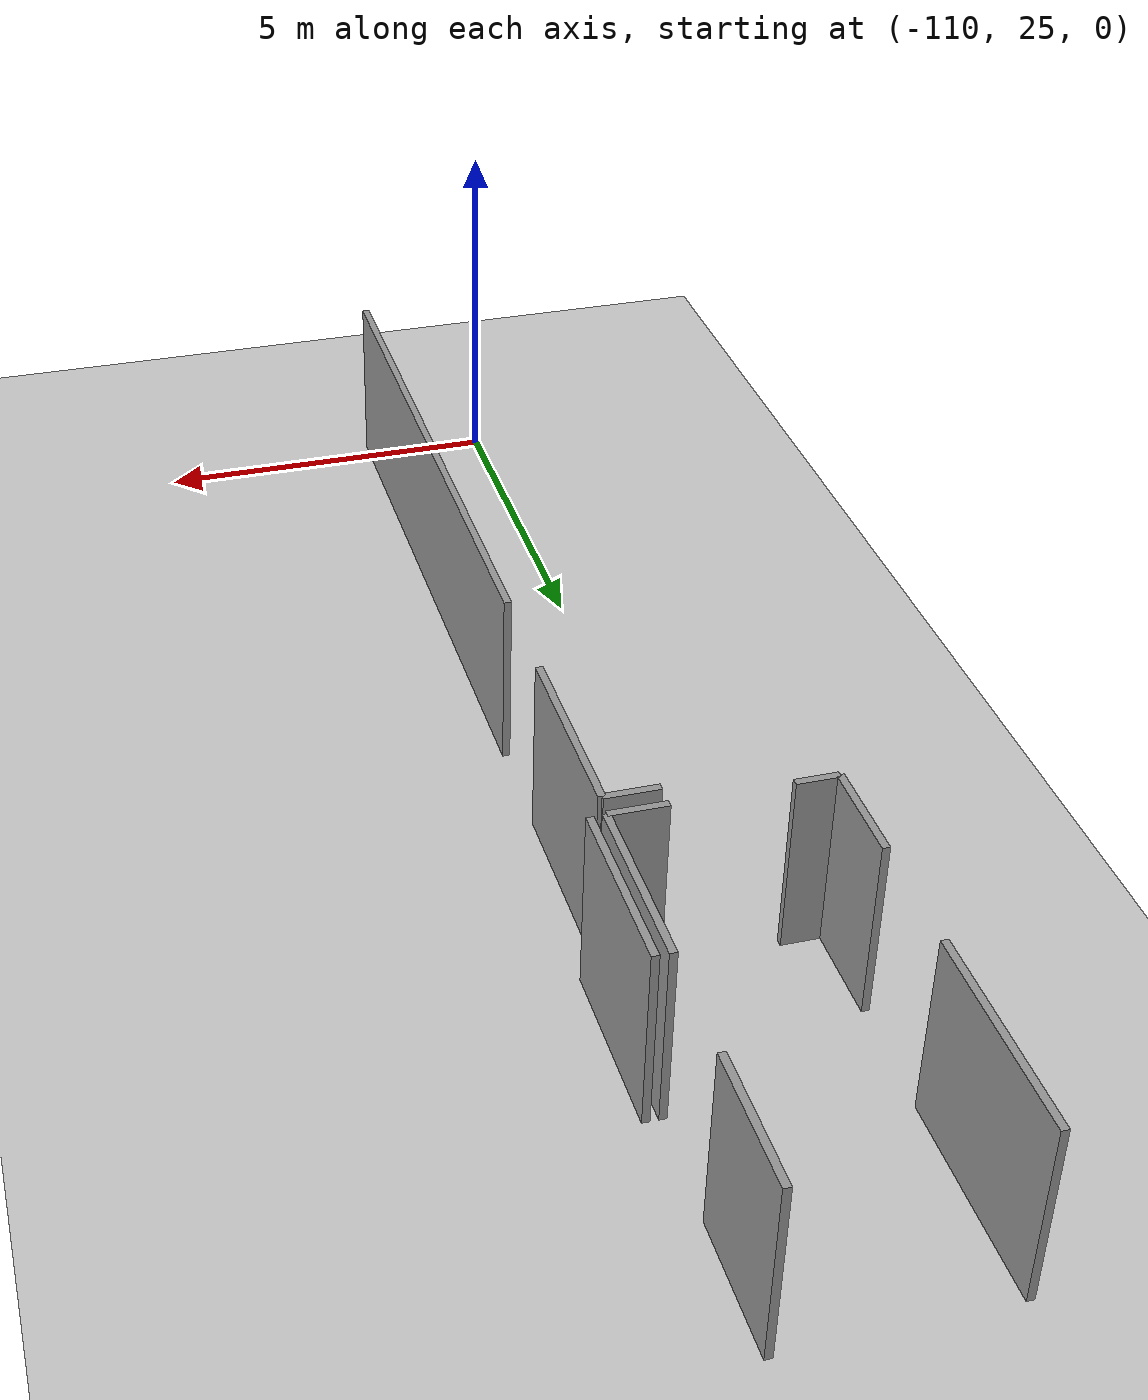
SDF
<sdf version="1.6">
 <world name="default">
  <model name="ground_plane">
   <static>1</static>
   <link name="link">
    <collision name="collision">
     <geometry><plane><normal>0 0 1</normal><size>100 100</size></plane></geometry>
     <surface><friction><ode><mu>100</mu><mu2>50</mu2></ode></friction></surface>
    </collision>
    <visual name="visual">
     <cast_shadows>0</cast_shadows>
     <geometry><plane><normal>0 0 1</normal><size>100 100</size></plane></geometry>
     <material>
      <script><uri>file://media/materials/scripts/gazebo.material</uri><name>Gazebo/Grey</name></script>
     </material>
    </visual>
   </link>
  </model>
  <model name="50015847">
   <static>1</static>
   <link name="Wall_5">
    <collision name="Wall_5_Collision">
     <geometry><box><size>2.36589210352 0.1 2.5</size></box></geometry>
     <pose>1.18294605176 0 1.25 0 0 0</pose>
    </collision>
    <visual name="Wall_5_Visual">
     <pose>1.18294605176 0 1.25 0 0 0</pose>
     <geometry><box><size>2.36589210352 0.1 2.5</size></box></geometry>
     <material>
      <script><uri>file://media/materials/scripts/gazebo.material</uri><name>Gazebo/Grey</name></script>
      <ambient>1 1 1 1</ambient>
     </material>
    </visual>
    <pose>24.3161132862 -6.29023236894 0 0 0 1.57079632679</pose>
   </link>
   <link name="Wall_15">
    <collision name="Wall_15_Collision">
     <geometry><box><size>1.82463009102 0.1 2.5</size></box></geometry>
     <pose>0.912315045508 0 1.25 0 0 0</pose>
    </collision>
    <visual name="Wall_15_Visual">
     <pose>0.912315045508 0 1.25 0 0 0</pose>
     <geometry><box><size>1.82463009102 0.1 2.5</size></box></geometry>
     <material>
      <script><uri>file://media/materials/scripts/gazebo.material</uri><name>Gazebo/Grey</name></script>
      <ambient>1 1 1 1</ambient>
     </material>
    </visual>
    <pose>24.1155234657 -0.604566024305 0 0 0 -1.57079632679</pose>
   </link>
   <link name="Wall_16">
    <collision name="Wall_16_Collision">
     <geometry><box><size>2.38063761631 0.1 2.5</size></box></geometry>
     <pose>1.19031880816 0 1.25 0 0 0</pose>
    </collision>
    <visual name="Wall_16_Visual">
     <pose>1.19031880816 0 1.25 0 0 0</pose>
     <geometry><box><size>2.38063761631 0.1 2.5</size></box></geometry>
     <material>
      <script><uri>file://media/materials/scripts/gazebo.material</uri><name>Gazebo/Grey</name></script>
      <ambient>1 1 1 1</ambient>
     </material>
    </visual>
    <pose>24.1155234657 -3.92128946967 0 0 0 -1.57079632679</pose>
   </link>
   <link name="Wall_17">
    <collision name="Wall_17_Collision">
     <geometry><box><size>0.758122743682 0.1 2.5</size></box></geometry>
     <pose>0.379061371841 0 1.25 0 0 0</pose>
    </collision>
    <visual name="Wall_17_Visual">
     <pose>0.379061371841 0 1.25 0 0 0</pose>
     <geometry><box><size>0.758122743682 0.1 2.5</size></box></geometry>
     <material>
      <script><uri>file://media/materials/scripts/gazebo.material</uri><name>Gazebo/Grey</name></script>
      <ambient>1 1 1 1</ambient>
     </material>
    </visual>
    <pose>24.1155234657 -6.30192708598 0 0 0 3.14159265359</pose>
   </link>
   <link name="Wall_18">
    <collision name="Wall_18_Collision">
     <geometry><box><size>0.563888747648 0.1 2.5</size></box></geometry>
     <pose>0.281944373824 0 1.25 0 0 0</pose>
    </collision>
    <visual name="Wall_18_Visual">
     <pose>0.281944373824 0 1.25 0 0 0</pose>
     <geometry><box><size>0.563888747648 0.1 2.5</size></box></geometry>
     <material>
      <script><uri>file://media/materials/scripts/gazebo.material</uri><name>Gazebo/Grey</name></script>
      <ambient>1 1 1 1</ambient>
     </material>
    </visual>
    <pose>21.8327655463 -6.30192708598 0 0 0 3.14159265359</pose>
   </link>
   <link name="Wall_19">
    <collision name="Wall_19_Collision">
     <geometry><box><size>1.3588752733 0.1 2.5</size></box></geometry>
     <pose>0.67943763665 0 1.25 0 0 0</pose>
    </collision>
    <visual name="Wall_19_Visual">
     <pose>0.67943763665 0 1.25 0 0 0</pose>
     <geometry><box><size>1.3588752733 0.1 2.5</size></box></geometry>
     <material>
      <script><uri>file://media/materials/scripts/gazebo.material</uri><name>Gazebo/Grey</name></script>
      <ambient>1 1 1 1</ambient>
     </material>
    </visual>
    <pose>21.2688767987 -6.30192708598 0 0 0 1.57079632679</pose>
   </link>
   <link name="Wall_20">
    <collision name="Wall_20_Collision">
     <geometry><box><size>2.78412782666 0.1 2.5</size></box></geometry>
     <pose>1.39206391333 0 1.25 0 0 0</pose>
    </collision>
    <visual name="Wall_20_Visual">
     <pose>1.39206391333 0 1.25 0 0 0</pose>
     <geometry><box><size>2.78412782666 0.1 2.5</size></box></geometry>
     <material>
      <script><uri>file://media/materials/scripts/gazebo.material</uri><name>Gazebo/Grey</name></script>
      <ambient>1 1 1 1</ambient>
     </material>
    </visual>
    <pose>21.2688767987 -3.38867137845 0 0 0 1.57481420308</pose>
   </link>
   <link name="Wall_103">
    <collision name="Wall_103_Collision">
     <geometry><box><size>0.71642853511 0.1 2.5</size></box></geometry>
     <pose>0.358214267555 0 1.25 0 0 0</pose>
    </collision>
    <visual name="Wall_103_Visual">
     <pose>0.358214267555 0 1.25 0 0 0</pose>
     <geometry><box><size>0.71642853511 0.1 2.5</size></box></geometry>
     <material>
      <script><uri>file://media/materials/scripts/gazebo.material</uri><name>Gazebo/Grey</name></script>
      <ambient>1 1 1 1</ambient>
     </material>
    </visual>
    <pose>23.3546041593 -6.61336248538 0 0 0 0.0</pose>
   </link>
   <link name="Wall_104">
    <collision name="Wall_104_Collision">
     <geometry><box><size>2.62622667412 0.1 2.5</size></box></geometry>
     <pose>1.31311333706 0 1.25 0 0 0</pose>
    </collision>
    <visual name="Wall_104_Visual">
     <pose>1.31311333706 0 1.25 0 0 0</pose>
     <geometry><box><size>2.62622667412 0.1 2.5</size></box></geometry>
     <material>
      <script><uri>file://media/materials/scripts/gazebo.material</uri><name>Gazebo/Grey</name></script>
      <ambient>1 1 1 1</ambient>
     </material>
    </visual>
    <pose>24.0710326944 -6.61336248538 0 0 0 -1.57079632679</pose>
   </link>
   <link name="Wall_105">
    <collision name="Wall_105_Collision">
     <geometry><box><size>8.53536380739 0.1 2.5</size></box></geometry>
     <pose>4.2676819037 0 1.25 0 0 0</pose>
    </collision>
    <visual name="Wall_105_Visual">
     <pose>4.2676819037 0 1.25 0 0 0</pose>
     <geometry><box><size>8.53536380739 0.1 2.5</size></box></geometry>
     <material>
      <script><uri>file://media/materials/scripts/gazebo.material</uri><name>Gazebo/Grey</name></script>
      <ambient>1 1 1 1</ambient>
     </material>
    </visual>
    <pose>24.0710326944 -10.7103269436 0 0 0 -1.57079632679</pose>
   </link>
   <pose>-132.35 43.9162226064 0 0 0 0</pose>
  </model>
 </world>
</sdf>
